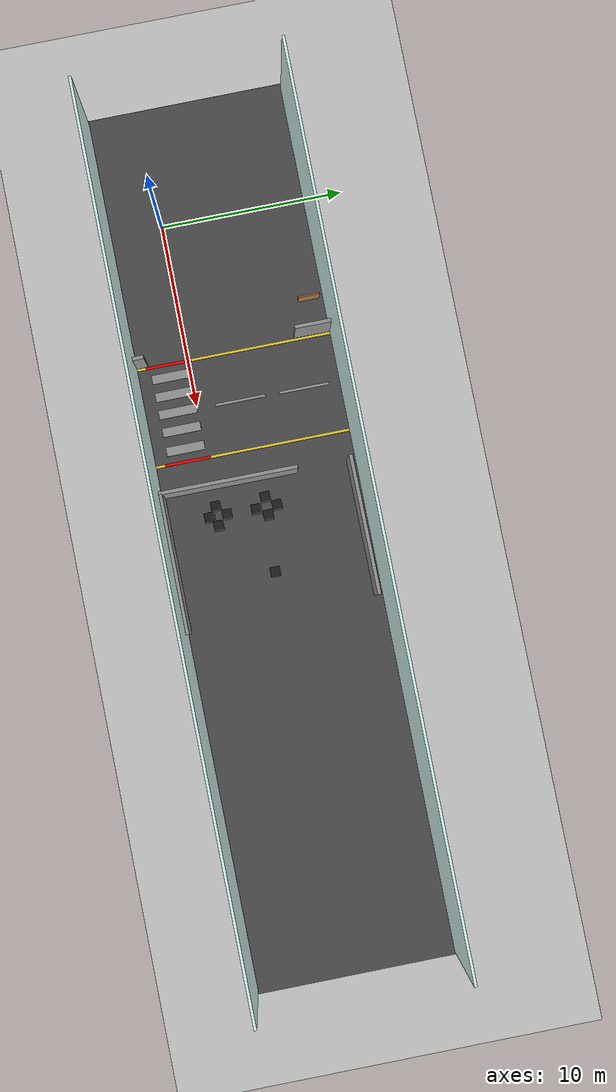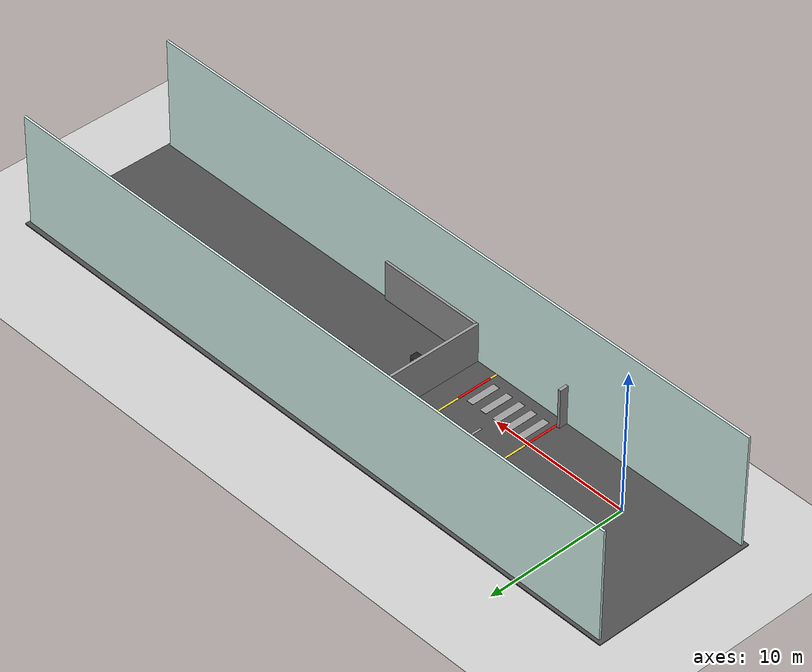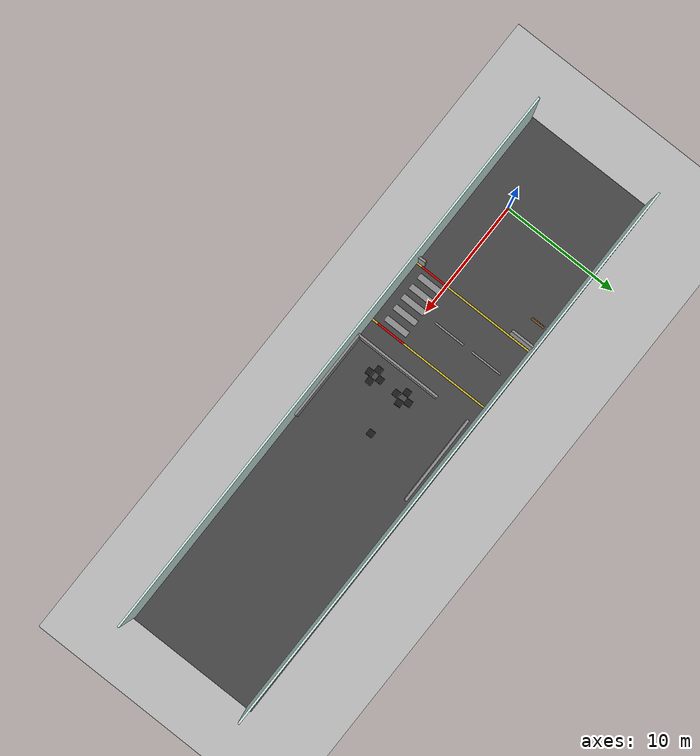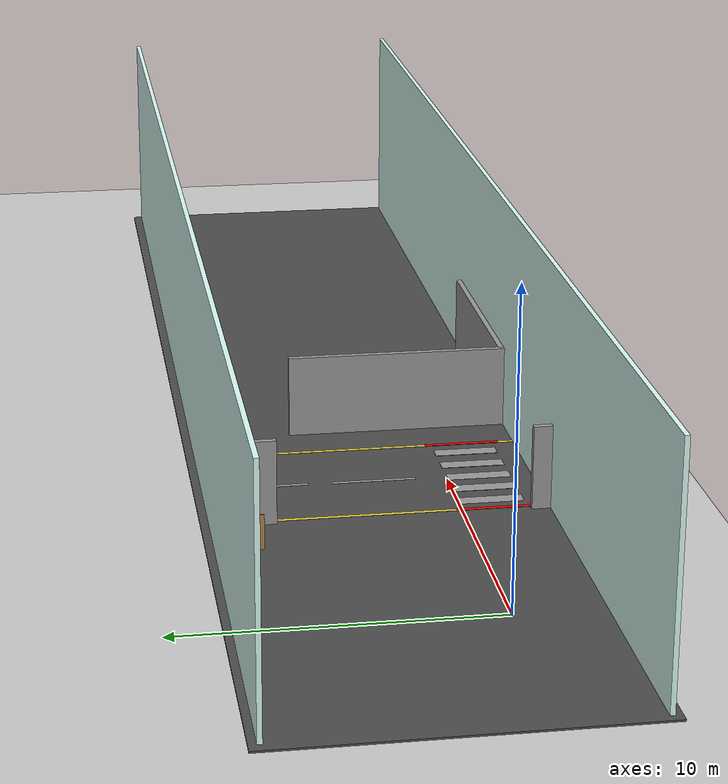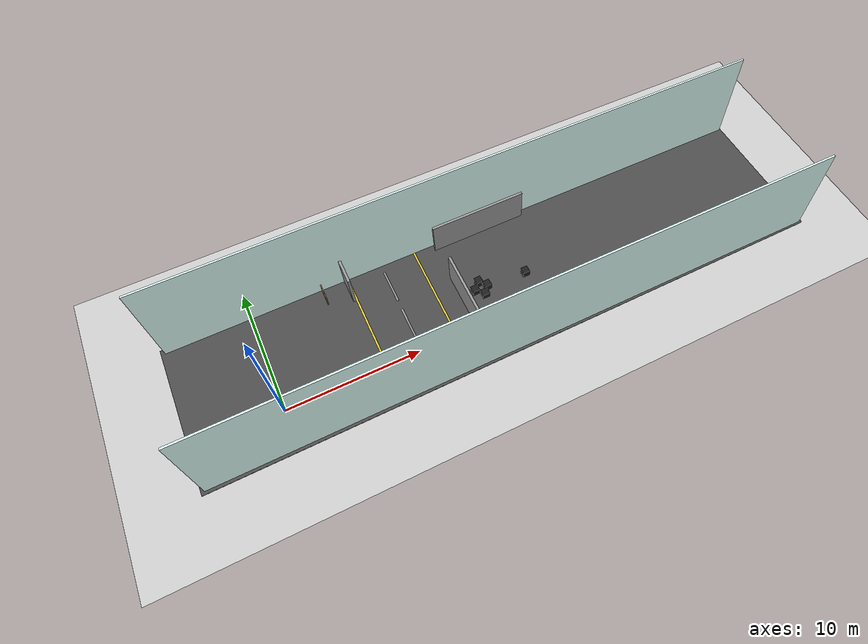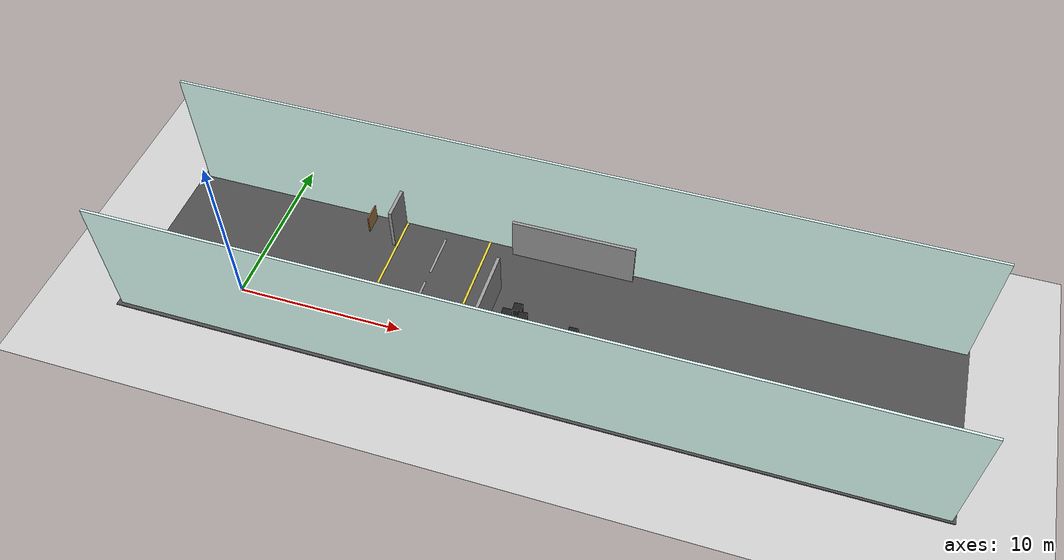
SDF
<sdf version="1.6">
 <world name="default">
  <model name="ground_plane">
   <static>1</static>
   <link name="link">
    <collision name="collision">
     <geometry><plane><normal>0 0 1</normal><size>100 100</size></plane></geometry>
     <surface>
      <contact><collide_bitmask>65535</collide_bitmask></contact>
      <friction><ode><mu>100</mu><mu2>50</mu2></ode></friction>
     </surface>
    </collision>
    <visual name="visual">
     <cast_shadows>0</cast_shadows>
     <geometry><plane><normal>0 0 1</normal><size>100 100</size></plane></geometry>
     <material>
      <script><uri>file://media/materials/scripts/gazebo.material</uri><name>Gazebo/Grey</name></script>
     </material>
    </visual>
   </link>
  </model>
  <model name="grey_wall">
   <static>1</static>
   <link name="link">
    <pose>0 0 1.4 0 -0 0</pose>
    <collision name="collision"><geometry><box><size>7.5 0.2 2.8</size></box></geometry></collision>
    <visual name="visual">
     <cast_shadows>0</cast_shadows>
     <geometry><box><size>7.5 0.2 2.8</size></box></geometry>
     <material>
      <script>
       <uri>model://grey_wall/materials/scripts</uri>
       <uri>model://grey_wall/materials/textures</uri>
       <name>vrc/grey_wall</name>
      </script>
     </material>
    </visual>
   </link>
   <pose>18.2315 7.51175 0 0 -0 0.005635</pose>
  </model>
  <model name="grey_wall_1">
   <static>1</static>
   <link name="link">
    <pose>0 0 1.4 0 -0 0</pose>
    <collision name="collision"><geometry><box><size>7.5 0.2 2.8</size></box></geometry></collision>
    <visual name="visual">
     <cast_shadows>0</cast_shadows>
     <geometry><box><size>7.5 0.2 2.8</size></box></geometry>
     <material>
      <script>
       <uri>model://grey_wall/materials/scripts</uri>
       <uri>model://grey_wall/materials/textures</uri>
       <name>vrc/grey_wall</name>
      </script>
     </material>
    </visual>
   </link>
   <pose>14.5585 0.893344 0 0 -0 1.56876</pose>
  </model>
  <model name="grey_wall_clone">
   <static>1</static>
   <link name="link">
    <pose>0 0 1.4 0 -0 0</pose>
    <collision name="collision"><geometry><box><size>7.5 0.2 2.8</size></box></geometry></collision>
    <visual name="visual">
     <cast_shadows>0</cast_shadows>
     <geometry><box><size>7.5 0.2 2.8</size></box></geometry>
     <material>
      <script>
       <uri>model://grey_wall/materials/scripts</uri>
       <uri>model://grey_wall/materials/textures</uri>
       <name>vrc/grey_wall</name>
      </script>
     </material>
    </visual>
   </link>
   <pose>18.3523 -2.72946 0 0 -0 0</pose>
  </model>
  <model name="asphalt_plane_new">
   <link name="link">
    <inertial>
     <mass>1</mass>
     <inertia><ixx>1</ixx><ixy>0</ixy><ixz>0</ixz><iyy>1</iyy><iyz>0</iyz><izz>1</izz></inertia>
    </inertial>
    <visual name="visual">
     <cast_shadows>0</cast_shadows>
     <geometry><box><size>48.1726 11.4674 0.5486</size></box></geometry>
     <material>
      <script>
       <uri>model://asphalt_plane/materials/scripts</uri>
       <uri>model://asphalt_plane/materials/textures</uri>
       <name>vrc/asphalt</name>
      </script>
      <shader type="pixel"><normal_map>__default__</normal_map></shader>
      <ambient>0.5 0.5 0.5 1</ambient>
      <diffuse>0.5 0.5 0.5 1</diffuse>
      <specular>0.2 0.2 0.2 1</specular>
      <emissive>0 0 0 1</emissive>
     </material>
    </visual>
   </link>
   <static>1</static>
   <pose>17.4989 2.59063 -0.264849 0 -0 0.00191</pose>
  </model>
  <model name="grey_wall_clone_0">
   <link name="link">
    <pose>2.90621 0.028382 1.4 0 -0 0</pose>
    <inertial>
     <mass>1</mass>
     <inertia><ixx>1</ixx><ixy>0</ixy><ixz>0</ixz><iyy>1</iyy><iyz>0</iyz><izz>1</izz></inertia>
    </inertial>
    <visual name="visual">
     <cast_shadows>0</cast_shadows>
     <geometry><box><size>2 0.2 2.8</size></box></geometry>
     <material>
      <script>
       <uri>model://grey_wall/materials/scripts</uri>
       <uri>model://grey_wall/materials/textures</uri>
       <name>vrc/grey_wall</name>
      </script>
      <shader type="pixel"><normal_map>__default__</normal_map></shader>
      <ambient>1 1 1 1</ambient>
      <diffuse>1 1 1 1</diffuse>
      <specular>0 0 0 1</specular>
      <emissive>0 0 0 1</emissive>
     </material>
    </visual>
    <collision name="collision">
     <geometry><box><size>2 0.2 2.8</size></box></geometry>
     <surface>
      <friction>
       <ode><mu>1</mu><mu2>1</mu2><fdir1>0 0 0</fdir1><slip1>0</slip1><slip2>0</slip2></ode>
       <torsional>
        <coefficient>1</coefficient>
        <patch_radius>0</patch_radius>
        <surface_radius>0</surface_radius>
        <use_patch_radius>1</use_patch_radius>
        <ode><slip>0</slip></ode>
       </torsional>
      </friction>
      <bounce><restitution_coefficient>0</restitution_coefficient><threshold>1e+06</threshold></bounce>
      <contact>
       <collide_without_contact>0</collide_without_contact>
       <collide_without_contact_bitmask>1</collide_without_contact_bitmask>
       <collide_bitmask>1</collide_bitmask>
       <ode>
        <soft_cfm>0</soft_cfm>
        <soft_erp>0.2</soft_erp>
        <kp>1e+13</kp>
        <kd>1</kd>
        <max_vel>0.01</max_vel>
        <min_depth>0</min_depth>
       </ode>
       <bullet>
        <split_impulse>1</split_impulse>
        <split_impulse_penetration_threshold>-0.01</split_impulse_penetration_threshold>
        <soft_cfm>0</soft_cfm>
        <soft_erp>0.2</soft_erp>
        <kp>1e+13</kp>
        <kd>1</kd>
       </bullet>
      </contact>
     </surface>
    </collision>
   </link>
   <static>1</static>
   <pose>7.26761 9.82843 0 0 0 -1.57</pose>
  </model>
  <model name="grey_wall_clone_0_clone_1">
   <link name="link">
    <pose>0 0 1.4 0 -0 0</pose>
    <inertial>
     <mass>1</mass>
     <inertia><ixx>1</ixx><ixy>0</ixy><ixz>0</ixz><iyy>1</iyy><iyz>0</iyz><izz>1</izz></inertia>
    </inertial>
    <visual name="visual">
     <cast_shadows>0</cast_shadows>
     <geometry><box><size>0.75 0.2 2.8</size></box></geometry>
     <material>
      <script>
       <uri>model://grey_wall/materials/scripts</uri>
       <uri>model://grey_wall/materials/textures</uri>
       <name>vrc/grey_wall</name>
      </script>
      <shader type="pixel"><normal_map>__default__</normal_map></shader>
      <ambient>1 1 1 1</ambient>
      <diffuse>1 1 1 1</diffuse>
      <specular>0 0 0 1</specular>
      <emissive>0 0 0 1</emissive>
     </material>
    </visual>
    <collision name="collision">
     <geometry><box><size>0.75 0.2 2.8</size></box></geometry>
     <surface>
      <friction>
       <ode><mu>1</mu><mu2>1</mu2><fdir1>0 0 0</fdir1><slip1>0</slip1><slip2>0</slip2></ode>
       <torsional>
        <coefficient>1</coefficient>
        <patch_radius>0</patch_radius>
        <surface_radius>0</surface_radius>
        <use_patch_radius>1</use_patch_radius>
        <ode><slip>0</slip></ode>
       </torsional>
      </friction>
      <bounce><restitution_coefficient>0</restitution_coefficient><threshold>1e+06</threshold></bounce>
      <contact>
       <collide_without_contact>0</collide_without_contact>
       <collide_without_contact_bitmask>1</collide_without_contact_bitmask>
       <collide_bitmask>1</collide_bitmask>
       <ode>
        <soft_cfm>0</soft_cfm>
        <soft_erp>0.2</soft_erp>
        <kp>1e+13</kp>
        <kd>1</kd>
        <max_vel>0.01</max_vel>
        <min_depth>0</min_depth>
       </ode>
       <bullet>
        <split_impulse>1</split_impulse>
        <split_impulse_penetration_threshold>-0.01</split_impulse_penetration_threshold>
        <soft_cfm>0</soft_cfm>
        <soft_erp>0.2</soft_erp>
        <kp>1e+13</kp>
        <kd>1</kd>
       </bullet>
      </contact>
     </surface>
    </collision>
   </link>
   <static>1</static>
   <pose>7.30492 -2.5737 0 0 0 -1.54624</pose>
  </model>
  <model name="unit_box_0_clone_22_clone_15">
   <link name="link">
    <inertial>
     <mass>1</mass>
     <inertia>
      <ixx>0.166667</ixx>
      <ixy>0</ixy>
      <ixz>0</ixz>
      <iyy>0.166667</iyy>
      <iyz>0</iyz>
      <izz>0.166667</izz>
     </inertia>
    </inertial>
    <visual name="visual">
     <geometry><box><size>0.530101 0.530101 0.530101</size></box></geometry>
     <material>
      <script><name>Gazebo/FlatBlack</name><uri>file://media/materials/scripts/gazebo.material</uri></script>
      <shader type="pixel"><normal_map>__default__</normal_map></shader>
      <ambient>0.1 0.1 0.1 1</ambient>
      <diffuse>0.1 0.1 0.1 1</diffuse>
      <specular>0.01 0.01 0.01 1</specular>
      <emissive>0 0 0 1</emissive>
     </material>
    </visual>
    <collision name="collision">
     <geometry><box><size>0.530101 0.530101 0.530101</size></box></geometry>
     <surface>
      <friction>
       <ode><mu>1</mu><mu2>1</mu2><fdir1>0 0 0</fdir1><slip1>0</slip1><slip2>0</slip2></ode>
       <torsional>
        <coefficient>1</coefficient>
        <patch_radius>0</patch_radius>
        <surface_radius>0</surface_radius>
        <use_patch_radius>1</use_patch_radius>
        <ode><slip>0</slip></ode>
       </torsional>
      </friction>
      <bounce><restitution_coefficient>0</restitution_coefficient><threshold>1e+06</threshold></bounce>
      <contact>
       <collide_without_contact>0</collide_without_contact>
       <collide_without_contact_bitmask>1</collide_without_contact_bitmask>
       <collide_bitmask>1</collide_bitmask>
       <ode>
        <soft_cfm>0</soft_cfm>
        <soft_erp>0.2</soft_erp>
        <kp>1e+13</kp>
        <kd>1</kd>
        <max_vel>0.01</max_vel>
        <min_depth>0</min_depth>
       </ode>
       <bullet>
        <split_impulse>1</split_impulse>
        <split_impulse_penetration_threshold>-0.01</split_impulse_penetration_threshold>
        <soft_cfm>0</soft_cfm>
        <soft_erp>0.2</soft_erp>
        <kp>1e+13</kp>
        <kd>1</kd>
       </bullet>
      </contact>
     </surface>
    </collision>
   </link>
   <static>0</static>
   <pose>16.1737 2.0964 0.284667 0.077054 -0 -0.016732</pose>
  </model>
  <model name="unit_box_0_clone_22_clone_4">
   <link name="link">
    <inertial>
     <mass>1</mass>
     <inertia>
      <ixx>0.166667</ixx>
      <ixy>0</ixy>
      <ixz>0</ixz>
      <iyy>0.166667</iyy>
      <iyz>0</iyz>
      <izz>0.166667</izz>
     </inertia>
    </inertial>
    <visual name="visual">
     <geometry><box><size>0.530101 0.530101 0.530101</size></box></geometry>
     <material>
      <script><name>Gazebo/FlatBlack</name><uri>file://media/materials/scripts/gazebo.material</uri></script>
      <shader type="pixel"><normal_map>__default__</normal_map></shader>
      <ambient>0.1 0.1 0.1 1</ambient>
      <diffuse>0.1 0.1 0.1 1</diffuse>
      <specular>0.01 0.01 0.01 1</specular>
      <emissive>0 0 0 1</emissive>
     </material>
    </visual>
    <collision name="collision">
     <geometry><box><size>0.530101 0.530101 0.530101</size></box></geometry>
     <surface>
      <friction>
       <ode><mu>1</mu><mu2>1</mu2><fdir1>0 0 0</fdir1><slip1>0</slip1><slip2>0</slip2></ode>
       <torsional>
        <coefficient>1</coefficient>
        <patch_radius>0</patch_radius>
        <surface_radius>0</surface_radius>
        <use_patch_radius>1</use_patch_radius>
        <ode><slip>0</slip></ode>
       </torsional>
      </friction>
      <bounce><restitution_coefficient>0</restitution_coefficient><threshold>1e+06</threshold></bounce>
      <contact>
       <collide_without_contact>0</collide_without_contact>
       <collide_without_contact_bitmask>1</collide_without_contact_bitmask>
       <collide_bitmask>1</collide_bitmask>
       <ode>
        <soft_cfm>0</soft_cfm>
        <soft_erp>0.2</soft_erp>
        <kp>1e+13</kp>
        <kd>1</kd>
        <max_vel>0.01</max_vel>
        <min_depth>0</min_depth>
       </ode>
       <bullet>
        <split_impulse>1</split_impulse>
        <split_impulse_penetration_threshold>-0.01</split_impulse_penetration_threshold>
        <soft_cfm>0</soft_cfm>
        <soft_erp>0.2</soft_erp>
        <kp>1e+13</kp>
        <kd>1</kd>
       </bullet>
      </contact>
     </surface>
    </collision>
   </link>
   <static>0</static>
   <pose>19.699 2.43698 0.31411 7e-06 4e-06 -0.010481</pose>
  </model>
  <model name="unit_box_0_clone_22_clone_15_clone">
   <link name="link">
    <inertial>
     <mass>1</mass>
     <inertia>
      <ixx>0.166667</ixx>
      <ixy>0</ixy>
      <ixz>0</ixz>
      <iyy>0.166667</iyy>
      <iyz>0</iyz>
      <izz>0.166667</izz>
     </inertia>
    </inertial>
    <visual name="visual">
     <geometry><box><size>0.530101 0.530101 0.530101</size></box></geometry>
     <material>
      <script><name>Gazebo/FlatBlack</name><uri>file://media/materials/scripts/gazebo.material</uri></script>
      <shader type="pixel"><normal_map>__default__</normal_map></shader>
      <ambient>0.1 0.1 0.1 1</ambient>
      <diffuse>0.1 0.1 0.1 1</diffuse>
      <specular>0.01 0.01 0.01 1</specular>
      <emissive>0 0 0 1</emissive>
     </material>
    </visual>
    <collision name="collision">
     <geometry><box><size>0.530101 0.530101 0.530101</size></box></geometry>
     <surface>
      <friction>
       <ode><mu>1</mu><mu2>1</mu2><fdir1>0 0 0</fdir1><slip1>0</slip1><slip2>0</slip2></ode>
       <torsional>
        <coefficient>1</coefficient>
        <patch_radius>0</patch_radius>
        <surface_radius>0</surface_radius>
        <use_patch_radius>1</use_patch_radius>
        <ode><slip>0</slip></ode>
       </torsional>
      </friction>
      <bounce><restitution_coefficient>0</restitution_coefficient><threshold>1e+06</threshold></bounce>
      <contact>
       <collide_without_contact>0</collide_without_contact>
       <collide_without_contact_bitmask>1</collide_without_contact_bitmask>
       <collide_bitmask>1</collide_bitmask>
       <ode>
        <soft_cfm>0</soft_cfm>
        <soft_erp>0.2</soft_erp>
        <kp>1e+13</kp>
        <kd>1</kd>
        <max_vel>0.01</max_vel>
        <min_depth>0</min_depth>
       </ode>
       <bullet>
        <split_impulse>1</split_impulse>
        <split_impulse_penetration_threshold>-0.01</split_impulse_penetration_threshold>
        <soft_cfm>0</soft_cfm>
        <soft_erp>0.2</soft_erp>
        <kp>1e+13</kp>
        <kd>1</kd>
       </bullet>
      </contact>
     </surface>
    </collision>
   </link>
   <static>0</static>
   <pose>16.6129 2.65853 0.310624 -0.001175 -0.020058 0.060983</pose>
  </model>
  <model name="unit_box_0_clone_22_clone_15_clone_0">
   <link name="link">
    <inertial>
     <mass>1</mass>
     <inertia>
      <ixx>0.166667</ixx>
      <ixy>0</ixy>
      <ixz>0</ixz>
      <iyy>0.166667</iyy>
      <iyz>0</iyz>
      <izz>0.166667</izz>
     </inertia>
    </inertial>
    <visual name="visual">
     <geometry><box><size>0.530101 0.530101 0.530101</size></box></geometry>
     <material>
      <script><name>Gazebo/FlatBlack</name><uri>file://media/materials/scripts/gazebo.material</uri></script>
      <shader type="pixel"><normal_map>__default__</normal_map></shader>
      <ambient>0.1 0.1 0.1 1</ambient>
      <diffuse>0.1 0.1 0.1 1</diffuse>
      <specular>0.01 0.01 0.01 1</specular>
      <emissive>0 0 0 1</emissive>
     </material>
    </visual>
    <collision name="collision">
     <geometry><box><size>0.530101 0.530101 0.530101</size></box></geometry>
     <surface>
      <friction>
       <ode><mu>1</mu><mu2>1</mu2><fdir1>0 0 0</fdir1><slip1>0</slip1><slip2>0</slip2></ode>
       <torsional>
        <coefficient>1</coefficient>
        <patch_radius>0</patch_radius>
        <surface_radius>0</surface_radius>
        <use_patch_radius>1</use_patch_radius>
        <ode><slip>0</slip></ode>
       </torsional>
      </friction>
      <bounce><restitution_coefficient>0</restitution_coefficient><threshold>1e+06</threshold></bounce>
      <contact>
       <collide_without_contact>0</collide_without_contact>
       <collide_without_contact_bitmask>1</collide_without_contact_bitmask>
       <collide_bitmask>1</collide_bitmask>
       <ode>
        <soft_cfm>0</soft_cfm>
        <soft_erp>0.2</soft_erp>
        <kp>1e+13</kp>
        <kd>1</kd>
        <max_vel>0.01</max_vel>
        <min_depth>0</min_depth>
       </ode>
       <bullet>
        <split_impulse>1</split_impulse>
        <split_impulse_penetration_threshold>-0.01</split_impulse_penetration_threshold>
        <soft_cfm>0</soft_cfm>
        <soft_erp>0.2</soft_erp>
        <kp>1e+13</kp>
        <kd>1</kd>
       </bullet>
      </contact>
     </surface>
    </collision>
   </link>
   <static>0</static>
   <pose>16.1648 3.22166 0.26505 0 -0 0.066212</pose>
  </model>
  <model name="unit_box_0_clone_22_clone_15_clone_1">
   <link name="link">
    <inertial>
     <mass>1</mass>
     <inertia>
      <ixx>0.166667</ixx>
      <ixy>0</ixy>
      <ixz>0</ixz>
      <iyy>0.166667</iyy>
      <iyz>0</iyz>
      <izz>0.166667</izz>
     </inertia>
    </inertial>
    <visual name="visual">
     <geometry><box><size>0.530101 0.530101 0.530101</size></box></geometry>
     <material>
      <script><name>Gazebo/FlatBlack</name><uri>file://media/materials/scripts/gazebo.material</uri></script>
      <shader type="pixel"><normal_map>__default__</normal_map></shader>
      <ambient>0.1 0.1 0.1 1</ambient>
      <diffuse>0.1 0.1 0.1 1</diffuse>
      <specular>0.01 0.01 0.01 1</specular>
      <emissive>0 0 0 1</emissive>
     </material>
    </visual>
    <collision name="collision">
     <geometry><box><size>0.530101 0.530101 0.530101</size></box></geometry>
     <surface>
      <friction>
       <ode><mu>1</mu><mu2>1</mu2><fdir1>0 0 0</fdir1><slip1>0</slip1><slip2>0</slip2></ode>
       <torsional>
        <coefficient>1</coefficient>
        <patch_radius>0</patch_radius>
        <surface_radius>0</surface_radius>
        <use_patch_radius>1</use_patch_radius>
        <ode><slip>0</slip></ode>
       </torsional>
      </friction>
      <bounce><restitution_coefficient>0</restitution_coefficient><threshold>1e+06</threshold></bounce>
      <contact>
       <collide_without_contact>0</collide_without_contact>
       <collide_without_contact_bitmask>1</collide_without_contact_bitmask>
       <collide_bitmask>1</collide_bitmask>
       <ode>
        <soft_cfm>0</soft_cfm>
        <soft_erp>0.2</soft_erp>
        <kp>1e+13</kp>
        <kd>1</kd>
        <max_vel>0.01</max_vel>
        <min_depth>0</min_depth>
       </ode>
       <bullet>
        <split_impulse>1</split_impulse>
        <split_impulse_penetration_threshold>-0.01</split_impulse_penetration_threshold>
        <soft_cfm>0</soft_cfm>
        <soft_erp>0.2</soft_erp>
        <kp>1e+13</kp>
        <kd>1</kd>
       </bullet>
      </contact>
     </surface>
    </collision>
   </link>
   <static>0</static>
   <pose>15.6259 2.67518 0.26505 0 -0 0.031191</pose>
  </model>
  <model name="unit_box_0_clone_22_clone_15_clone_2">
   <link name="link">
    <inertial>
     <mass>1</mass>
     <inertia>
      <ixx>0.166667</ixx>
      <ixy>0</ixy>
      <ixz>0</ixz>
      <iyy>0.166667</iyy>
      <iyz>0</iyz>
      <izz>0.166667</izz>
     </inertia>
    </inertial>
    <visual name="visual">
     <geometry><box><size>0.530101 0.530101 0.530101</size></box></geometry>
     <material>
      <script><name>Gazebo/FlatBlack</name><uri>file://media/materials/scripts/gazebo.material</uri></script>
      <shader type="pixel"><normal_map>__default__</normal_map></shader>
      <ambient>0.1 0.1 0.1 1</ambient>
      <diffuse>0.1 0.1 0.1 1</diffuse>
      <specular>0.01 0.01 0.01 1</specular>
      <emissive>0 0 0 1</emissive>
     </material>
    </visual>
    <collision name="collision">
     <geometry><box><size>0.530101 0.530101 0.530101</size></box></geometry>
     <surface>
      <friction>
       <ode><mu>1</mu><mu2>1</mu2><fdir1>0 0 0</fdir1><slip1>0</slip1><slip2>0</slip2></ode>
       <torsional>
        <coefficient>1</coefficient>
        <patch_radius>0</patch_radius>
        <surface_radius>0</surface_radius>
        <use_patch_radius>1</use_patch_radius>
        <ode><slip>0</slip></ode>
       </torsional>
      </friction>
      <bounce><restitution_coefficient>0</restitution_coefficient><threshold>1e+06</threshold></bounce>
      <contact>
       <collide_without_contact>0</collide_without_contact>
       <collide_without_contact_bitmask>1</collide_without_contact_bitmask>
       <collide_bitmask>1</collide_bitmask>
       <ode>
        <soft_cfm>0</soft_cfm>
        <soft_erp>0.2</soft_erp>
        <kp>1e+13</kp>
        <kd>1</kd>
        <max_vel>0.01</max_vel>
        <min_depth>0</min_depth>
       </ode>
       <bullet>
        <split_impulse>1</split_impulse>
        <split_impulse_penetration_threshold>-0.01</split_impulse_penetration_threshold>
        <soft_cfm>0</soft_cfm>
        <soft_erp>0.2</soft_erp>
        <kp>1e+13</kp>
        <kd>1</kd>
       </bullet>
      </contact>
     </surface>
    </collision>
   </link>
   <static>0</static>
   <pose>16.6776 -0.07224 0.311374 -0.000263 -0.023886 0.013632</pose>
  </model>
  <model name="unit_box_0_clone_22_clone_15_clone_3">
   <link name="link">
    <inertial>
     <mass>1</mass>
     <inertia>
      <ixx>0.166667</ixx>
      <ixy>0</ixy>
      <ixz>0</ixz>
      <iyy>0.166667</iyy>
      <iyz>0</iyz>
      <izz>0.166667</izz>
     </inertia>
    </inertial>
    <visual name="visual">
     <geometry><box><size>0.530101 0.530101 0.530101</size></box></geometry>
     <material>
      <script><name>Gazebo/FlatBlack</name><uri>file://media/materials/scripts/gazebo.material</uri></script>
      <shader type="pixel"><normal_map>__default__</normal_map></shader>
      <ambient>0.1 0.1 0.1 1</ambient>
      <diffuse>0.1 0.1 0.1 1</diffuse>
      <specular>0.01 0.01 0.01 1</specular>
      <emissive>0 0 0 1</emissive>
     </material>
    </visual>
    <collision name="collision">
     <geometry><box><size>0.530101 0.530101 0.530101</size></box></geometry>
     <surface>
      <friction>
       <ode><mu>1</mu><mu2>1</mu2><fdir1>0 0 0</fdir1><slip1>0</slip1><slip2>0</slip2></ode>
       <torsional>
        <coefficient>1</coefficient>
        <patch_radius>0</patch_radius>
        <surface_radius>0</surface_radius>
        <use_patch_radius>1</use_patch_radius>
        <ode><slip>0</slip></ode>
       </torsional>
      </friction>
      <bounce><restitution_coefficient>0</restitution_coefficient><threshold>1e+06</threshold></bounce>
      <contact>
       <collide_without_contact>0</collide_without_contact>
       <collide_without_contact_bitmask>1</collide_without_contact_bitmask>
       <collide_bitmask>1</collide_bitmask>
       <ode>
        <soft_cfm>0</soft_cfm>
        <soft_erp>0.2</soft_erp>
        <kp>1e+13</kp>
        <kd>1</kd>
        <max_vel>0.01</max_vel>
        <min_depth>0</min_depth>
       </ode>
       <bullet>
        <split_impulse>1</split_impulse>
        <split_impulse_penetration_threshold>-0.01</split_impulse_penetration_threshold>
        <soft_cfm>0</soft_cfm>
        <soft_erp>0.2</soft_erp>
        <kp>1e+13</kp>
        <kd>1</kd>
       </bullet>
      </contact>
     </surface>
    </collision>
   </link>
   <static>0</static>
   <pose>16.1471 0.46453 0.291846 -0.106548 -0.00042 -0.003955</pose>
  </model>
  <model name="unit_box_0_clone_22_clone_15_clone_4">
   <link name="link">
    <inertial>
     <mass>1</mass>
     <inertia>
      <ixx>0.166667</ixx>
      <ixy>0</ixy>
      <ixz>0</ixz>
      <iyy>0.166667</iyy>
      <iyz>0</iyz>
      <izz>0.166667</izz>
     </inertia>
    </inertial>
    <visual name="visual">
     <geometry><box><size>0.530101 0.530101 0.530101</size></box></geometry>
     <material>
      <script><name>Gazebo/FlatBlack</name><uri>file://media/materials/scripts/gazebo.material</uri></script>
      <shader type="pixel"><normal_map>__default__</normal_map></shader>
      <ambient>0.1 0.1 0.1 1</ambient>
      <diffuse>0.1 0.1 0.1 1</diffuse>
      <specular>0.01 0.01 0.01 1</specular>
      <emissive>0 0 0 1</emissive>
     </material>
    </visual>
    <collision name="collision">
     <geometry><box><size>0.530101 0.530101 0.530101</size></box></geometry>
     <surface>
      <friction>
       <ode><mu>1</mu><mu2>1</mu2><fdir1>0 0 0</fdir1><slip1>0</slip1><slip2>0</slip2></ode>
       <torsional>
        <coefficient>1</coefficient>
        <patch_radius>0</patch_radius>
        <surface_radius>0</surface_radius>
        <use_patch_radius>1</use_patch_radius>
        <ode><slip>0</slip></ode>
       </torsional>
      </friction>
      <bounce><restitution_coefficient>0</restitution_coefficient><threshold>1e+06</threshold></bounce>
      <contact>
       <collide_without_contact>0</collide_without_contact>
       <collide_without_contact_bitmask>1</collide_without_contact_bitmask>
       <collide_bitmask>1</collide_bitmask>
       <ode>
        <soft_cfm>0</soft_cfm>
        <soft_erp>0.2</soft_erp>
        <kp>1e+13</kp>
        <kd>1</kd>
        <max_vel>0.01</max_vel>
        <min_depth>0</min_depth>
       </ode>
       <bullet>
        <split_impulse>1</split_impulse>
        <split_impulse_penetration_threshold>-0.01</split_impulse_penetration_threshold>
        <soft_cfm>0</soft_cfm>
        <soft_erp>0.2</soft_erp>
        <kp>1e+13</kp>
        <kd>1</kd>
       </bullet>
      </contact>
     </surface>
    </collision>
   </link>
   <static>0</static>
   <pose>15.6128 -0.033067 0.26505 0 0 -0.001316</pose>
  </model>
  <model name="unit_box_0_clone_22_clone_15_clone_5">
   <link name="link">
    <inertial>
     <mass>1</mass>
     <inertia>
      <ixx>0.166667</ixx>
      <ixy>0</ixy>
      <ixz>0</ixz>
      <iyy>0.166667</iyy>
      <iyz>0</iyz>
      <izz>0.166667</izz>
     </inertia>
    </inertial>
    <visual name="visual">
     <geometry><box><size>0.530101 0.530101 0.530101</size></box></geometry>
     <material>
      <script><name>Gazebo/FlatBlack</name><uri>file://media/materials/scripts/gazebo.material</uri></script>
      <shader type="pixel"><normal_map>__default__</normal_map></shader>
      <ambient>0.1 0.1 0.1 1</ambient>
      <diffuse>0.1 0.1 0.1 1</diffuse>
      <specular>0.01 0.01 0.01 1</specular>
      <emissive>0 0 0 1</emissive>
     </material>
    </visual>
    <collision name="collision">
     <geometry><box><size>0.530101 0.530101 0.530101</size></box></geometry>
     <surface>
      <friction>
       <ode><mu>1</mu><mu2>1</mu2><fdir1>0 0 0</fdir1><slip1>0</slip1><slip2>0</slip2></ode>
       <torsional>
        <coefficient>1</coefficient>
        <patch_radius>0</patch_radius>
        <surface_radius>0</surface_radius>
        <use_patch_radius>1</use_patch_radius>
        <ode><slip>0</slip></ode>
       </torsional>
      </friction>
      <bounce><restitution_coefficient>0</restitution_coefficient><threshold>1e+06</threshold></bounce>
      <contact>
       <collide_without_contact>0</collide_without_contact>
       <collide_without_contact_bitmask>1</collide_without_contact_bitmask>
       <collide_bitmask>1</collide_bitmask>
       <ode>
        <soft_cfm>0</soft_cfm>
        <soft_erp>0.2</soft_erp>
        <kp>1e+13</kp>
        <kd>1</kd>
        <max_vel>0.01</max_vel>
        <min_depth>0</min_depth>
       </ode>
       <bullet>
        <split_impulse>1</split_impulse>
        <split_impulse_penetration_threshold>-0.01</split_impulse_penetration_threshold>
        <soft_cfm>0</soft_cfm>
        <soft_erp>0.2</soft_erp>
        <kp>1e+13</kp>
        <kd>1</kd>
       </bullet>
      </contact>
     </surface>
    </collision>
   </link>
   <static>0</static>
   <pose>16.1474 -0.467483 0.286451 0.083017 -0.001302 0.015753</pose>
  </model>
  <model name="road_marks">
   <link name="Wall_63">
    <pose>2.6855 -0.180493 0.00816 0 0 -1.5708</pose>
    <inertial>
     <inertia><ixx>0</ixx><ixy>0</ixy><ixz>0</ixz><iyy>0</iyy><iyz>0</iyz><izz>0</izz></inertia>
     <mass>0</mass>
    </inertial>
    <visual name="Wall_63_Visual">
     <pose>0 0 1.25 0 -0 0</pose>
     <geometry><box><size>10.85 0.15 0.05</size></box></geometry>
     <material>
      <script><uri>file://media/materials/scripts/gazebo.material</uri><name>Gazebo/ZincYellow</name></script>
      <ambient>1 1 1 1</ambient>
      <shader type="pixel"><normal_map>__default__</normal_map></shader>
      <diffuse>0.7 0.7 0.7 1</diffuse>
      <specular>0.01 0.01 0.01 1</specular>
      <emissive>0 0 0 1</emissive>
     </material>
     <meta><layer>0</layer></meta>
    </visual>
   </link>
   <link name="Wall_68">
    <pose>-2.72228 -0.223638 0.00816 0 0 -1.5708</pose>
    <inertial>
     <mass>1</mass>
     <inertia><ixx>1</ixx><ixy>0</ixy><ixz>0</ixz><iyy>1</iyy><iyz>0</iyz><izz>1</izz></inertia>
    </inertial>
    <visual name="Wall_68_Visual">
     <pose>0 0 1.25 0 -0 0</pose>
     <geometry><box><size>10.85 0.15 0.05</size></box></geometry>
     <material>
      <script><uri>file://media/materials/scripts/gazebo.material</uri><name>Gazebo/ZincYellow</name></script>
      <ambient>1 1 1 1</ambient>
      <shader type="pixel"><normal_map>__default__</normal_map></shader>
      <diffuse>0.7 0.7 0.7 1</diffuse>
      <specular>0.01 0.01 0.01 1</specular>
      <emissive>0 0 0 1</emissive>
     </material>
     <meta><layer>0</layer></meta>
    </visual>
   </link>
   <link name="Wall_70">
    <pose>-0.025427 3.13042 0.00816 0 0 -1.5708</pose>
    <inertial>
     <mass>1</mass>
     <inertia><ixx>1</ixx><ixy>0</ixy><ixz>0</ixz><iyy>1</iyy><iyz>0</iyz><izz>1</izz></inertia>
    </inertial>
    <visual name="Wall_70_Visual">
     <pose>0 0 1.25 0 -0 0</pose>
     <geometry><box><size>2.75 0.15 0.05</size></box></geometry>
     <material>
      <script><uri>file://media/materials/scripts/gazebo.material</uri><name>Gazebo/Grey</name></script>
      <ambient>1 1 1 1</ambient>
      <shader type="pixel"><normal_map>__default__</normal_map></shader>
      <diffuse>0.7 0.7 0.7 1</diffuse>
      <specular>0.01 0.01 0.01 1</specular>
      <emissive>0 0 0 1</emissive>
     </material>
     <meta><layer>0</layer></meta>
    </visual>
   </link>
   <link name="Wall_72">
    <pose>-0.041656 -0.398325 0.00816 0 0 -1.5708</pose>
    <inertial>
     <mass>1</mass>
     <inertia><ixx>1</ixx><ixy>0</ixy><ixz>0</ixz><iyy>1</iyy><iyz>0</iyz><izz>1</izz></inertia>
    </inertial>
    <visual name="Wall_72_Visual">
     <pose>0 0 1.25 0 -0 0</pose>
     <geometry><box><size>2.75 0.15 0.05</size></box></geometry>
     <material>
      <script><uri>file://media/materials/scripts/gazebo.material</uri><name>Gazebo/Grey</name></script>
      <ambient>1 1 1 1</ambient>
      <shader type="pixel"><normal_map>__default__</normal_map></shader>
      <diffuse>0.7 0.7 0.7 1</diffuse>
      <specular>0.01 0.01 0.01 1</specular>
      <emissive>0 0 0 1</emissive>
     </material>
     <meta><layer>0</layer></meta>
    </visual>
   </link>
   <link name="link_0">
    <inertial>
     <mass>1</mass>
     <inertia>
      <ixx>0.166667</ixx>
      <ixy>0</ixy>
      <ixz>0</ixz>
      <iyy>0.166667</iyy>
      <iyz>0</iyz>
      <izz>0.166667</izz>
     </inertia>
    </inertial>
    <pose>-2.75125 -3.91658 1.77945 0 -0 0</pose>
    <visual name="visual">
     <pose>0 0 -0.53 0 -0 0</pose>
     <geometry><box><size>0.2 2 0.03</size></box></geometry>
     <material>
      <lighting>1</lighting>
      <script><uri>file://media/materials/scripts/gazebo.material</uri><name>Gazebo/Red</name></script>
      <shader type="pixel"><normal_map>__default__</normal_map></shader>
      <ambient>0.3 0.3 0.3 1</ambient>
      <diffuse>0.7 0.7 0.7 1</diffuse>
      <specular>0.01 0.01 0.01 1</specular>
      <emissive>0 0 0 1</emissive>
     </material>
    </visual>
   </link>
   <link name="link_0_clone">
    <inertial>
     <mass>1</mass>
     <inertia>
      <ixx>0.166667</ixx>
      <ixy>0</ixy>
      <ixz>0</ixz>
      <iyy>0.166667</iyy>
      <iyz>0</iyz>
      <izz>0.166667</izz>
     </inertia>
    </inertial>
    <pose>2.68914 -4.13721 1.77945 0 -0 0</pose>
    <visual name="visual">
     <pose>0 0 -0.53 0 -0 0</pose>
     <geometry><box><size>0.2 2 0.03</size></box></geometry>
     <material>
      <lighting>1</lighting>
      <script><uri>file://media/materials/scripts/gazebo.material</uri><name>Gazebo/Red</name></script>
      <shader type="pixel"><normal_map>__default__</normal_map></shader>
      <ambient>0.3 0.3 0.3 1</ambient>
      <diffuse>0.7 0.7 0.7 1</diffuse>
      <specular>0.01 0.01 0.01 1</specular>
      <emissive>0 0 0 1</emissive>
     </material>
    </visual>
   </link>
   <static>1</static>
   <pose>10.2071 2.79317 -1.27065 0 -0 0</pose>
  </model>
  <model name="world_frame">
   <link name="Wall_210">
    <pose>-0.024075 -5.42699 -0.100255 0 -0 0</pose>
    <visual name="Wall_210_Visual">
     <pose>0 0 4 0 -0 0</pose>
     <geometry><box><size>47.75 0.15 8</size></box></geometry>
     <material>
      <script><uri>file://media/materials/scripts/gazebo.material</uri><name>Gazebo/Grey</name></script>
      <ambient>0.866667 1 0.972549 1</ambient>
      <shader type="pixel"/>
      <diffuse>0.7 0.7 0.7 1</diffuse>
      <specular>0.01 0.01 0.01 1</specular>
      <emissive>0 0 0 1</emissive>
     </material>
     <meta><layer>0</layer></meta>
    </visual>
    <collision name="Wall_210_Collision">
     <pose>0 0 4 0 -0 0</pose>
     <geometry><box><size>47.75 0.15 8</size></box></geometry>
     <surface>
      <friction>
       <ode><mu>1</mu><mu2>1</mu2><fdir1>0 0 0</fdir1><slip1>0</slip1><slip2>0</slip2></ode>
       <torsional>
        <coefficient>1</coefficient>
        <patch_radius>0</patch_radius>
        <surface_radius>0</surface_radius>
        <use_patch_radius>1</use_patch_radius>
        <ode><slip>0</slip></ode>
       </torsional>
      </friction>
      <bounce><restitution_coefficient>0</restitution_coefficient><threshold>1e+06</threshold></bounce>
      <contact>
       <collide_without_contact>0</collide_without_contact>
       <collide_without_contact_bitmask>1</collide_without_contact_bitmask>
       <collide_bitmask>1</collide_bitmask>
       <ode>
        <soft_cfm>0</soft_cfm>
        <soft_erp>0.2</soft_erp>
        <kp>1e+13</kp>
        <kd>1</kd>
        <max_vel>0.01</max_vel>
        <min_depth>0</min_depth>
       </ode>
       <bullet>
        <split_impulse>1</split_impulse>
        <split_impulse_penetration_threshold>-0.01</split_impulse_penetration_threshold>
        <soft_cfm>0</soft_cfm>
        <soft_erp>0.2</soft_erp>
        <kp>1e+13</kp>
        <kd>1</kd>
       </bullet>
      </contact>
     </surface>
    </collision>
   </link>
   <link name="Wall_212">
    <pose>0.020361 5.425 -0.100255 0 -0 3.14159</pose>
    <visual name="Wall_212_Visual">
     <pose>0 0 4 0 -0 0</pose>
     <geometry><box><size>47.75 0.15 8</size></box></geometry>
     <material>
      <script><uri>file://media/materials/scripts/gazebo.material</uri><name>Gazebo/Grey</name></script>
      <ambient>0.866667 1 0.972549 1</ambient>
      <shader type="pixel"/>
      <diffuse>0.7 0.7 0.7 1</diffuse>
      <specular>0.01 0.01 0.01 1</specular>
      <emissive>0 0 0 1</emissive>
     </material>
     <meta><layer>0</layer></meta>
    </visual>
    <collision name="Wall_212_Collision">
     <pose>0 0 4 0 -0 0</pose>
     <geometry><box><size>47.75 0.15 8</size></box></geometry>
     <surface>
      <friction>
       <ode><mu>1</mu><mu2>1</mu2><fdir1>0 0 0</fdir1><slip1>0</slip1><slip2>0</slip2></ode>
       <torsional>
        <coefficient>1</coefficient>
        <patch_radius>0</patch_radius>
        <surface_radius>0</surface_radius>
        <use_patch_radius>1</use_patch_radius>
        <ode><slip>0</slip></ode>
       </torsional>
      </friction>
      <bounce><restitution_coefficient>0</restitution_coefficient><threshold>1e+06</threshold></bounce>
      <contact>
       <collide_without_contact>0</collide_without_contact>
       <collide_without_contact_bitmask>1</collide_without_contact_bitmask>
       <collide_bitmask>1</collide_bitmask>
       <ode>
        <soft_cfm>0</soft_cfm>
        <soft_erp>0.2</soft_erp>
        <kp>1e+13</kp>
        <kd>1</kd>
        <max_vel>0.01</max_vel>
        <min_depth>0</min_depth>
       </ode>
       <bullet>
        <split_impulse>1</split_impulse>
        <split_impulse_penetration_threshold>-0.01</split_impulse_penetration_threshold>
        <soft_cfm>0</soft_cfm>
        <soft_erp>0.2</soft_erp>
        <kp>1e+13</kp>
        <kd>1</kd>
       </bullet>
      </contact>
     </surface>
    </collision>
   </link>
   <link name="Wall_215">
    <pose>-9.41025 -3.61132 -0.128225 0 -0 1.5708</pose>
    <inertial>
     <mass>1</mass>
     <inertia><ixx>1</ixx><ixy>0</ixy><ixz>0</ixz><iyy>1</iyy><iyz>0</iyz><izz>1</izz></inertia>
    </inertial>
    <visual name="Wall_215_Visual">
     <pose>0 0 0.119 0 -0 0</pose>
     <geometry><box><size>2.1 0.5 0.038</size></box></geometry>
     <material>
      <script><uri>file://media/materials/scripts/gazebo.material</uri><name>Gazebo/Grey</name></script>
      <ambient>1 1 1 1</ambient>
      <shader type="pixel"><normal_map>__default__</normal_map></shader>
      <diffuse>0.7 0.7 0.7 1</diffuse>
      <specular>0.01 0.01 0.01 1</specular>
      <emissive>0 0 0 1</emissive>
     </material>
     <meta><layer>0</layer></meta>
    </visual>
   </link>
   <link name="Wall_217">
    <pose>-7.44858 -3.614 -0.126957 0 0 -1.5708</pose>
    <inertial>
     <mass>1</mass>
     <inertia><ixx>1</ixx><ixy>0</ixy><ixz>0</ixz><iyy>1</iyy><iyz>0</iyz><izz>1</izz></inertia>
    </inertial>
    <visual name="Wall_217_Visual">
     <pose>0 0 0.119 0 -0 0</pose>
     <geometry><box><size>2.1 0.5 0.038</size></box></geometry>
     <material>
      <script><uri>file://media/materials/scripts/gazebo.material</uri><name>Gazebo/Grey</name></script>
      <ambient>1 1 1 1</ambient>
      <shader type="pixel"><normal_map>__default__</normal_map></shader>
      <diffuse>0.7 0.7 0.7 1</diffuse>
      <specular>0.01 0.01 0.01 1</specular>
      <emissive>0 0 0 1</emissive>
     </material>
     <meta><layer>0</layer></meta>
    </visual>
   </link>
   <link name="Wall_219">
    <pose>-8.41658 -3.61132 -0.120812 0 0 -1.5708</pose>
    <inertial>
     <mass>1</mass>
     <inertia><ixx>1</ixx><ixy>0</ixy><ixz>0</ixz><iyy>1</iyy><iyz>0</iyz><izz>1</izz></inertia>
    </inertial>
    <visual name="Wall_219_Visual">
     <pose>0 0 0.119 0 -0 0</pose>
     <geometry><box><size>2.1 0.5 0.038</size></box></geometry>
     <material>
      <script><uri>file://media/materials/scripts/gazebo.material</uri><name>Gazebo/Grey</name></script>
      <ambient>1 1 1 1</ambient>
      <shader type="pixel"><normal_map>__default__</normal_map></shader>
      <diffuse>0.7 0.7 0.7 1</diffuse>
      <specular>0.01 0.01 0.01 1</specular>
      <emissive>0 0 0 1</emissive>
     </material>
     <meta><layer>0</layer></meta>
    </visual>
   </link>
   <link name="Wall_221">
    <pose>-6.45844 -3.59362 -0.116158 0 0 -1.5708</pose>
    <inertial>
     <mass>1</mass>
     <inertia><ixx>1</ixx><ixy>0</ixy><ixz>0</ixz><iyy>1</iyy><iyz>0</iyz><izz>1</izz></inertia>
    </inertial>
    <visual name="Wall_221_Visual">
     <pose>0 0 0.119 0 -0 0</pose>
     <geometry><box><size>2.1 0.5 0.038</size></box></geometry>
     <material>
      <script><uri>file://media/materials/scripts/gazebo.material</uri><name>Gazebo/Grey</name></script>
      <ambient>1 1 1 1</ambient>
      <shader type="pixel"><normal_map>__default__</normal_map></shader>
      <diffuse>0.7 0.7 0.7 1</diffuse>
      <specular>0.01 0.01 0.01 1</specular>
      <emissive>0 0 0 1</emissive>
     </material>
     <meta><layer>0</layer></meta>
    </visual>
   </link>
   <link name="Wall_223">
    <pose>-5.39229 -3.58819 -0.12866 0 0 -1.5708</pose>
    <inertial>
     <mass>1</mass>
     <inertia><ixx>1</ixx><ixy>0</ixy><ixz>0</ixz><iyy>1</iyy><iyz>0</iyz><izz>1</izz></inertia>
    </inertial>
    <visual name="Wall_223_Visual">
     <pose>0 0 0.129 0 -0 0</pose>
     <geometry><box><size>2.1 0.5 0.038</size></box></geometry>
     <material>
      <script><uri>file://media/materials/scripts/gazebo.material</uri><name>Gazebo/Grey</name></script>
      <ambient>1 1 1 1</ambient>
      <shader type="pixel"><normal_map>__default__</normal_map></shader>
      <diffuse>0.7 0.7 0.7 1</diffuse>
      <specular>0.01 0.01 0.01 1</specular>
      <emissive>0 0 0 1</emissive>
     </material>
     <meta><layer>0</layer></meta>
    </visual>
   </link>
   <link name="Wall_91">
    <pose>-12.1146 4.557 -0.100255 0 0 -1.5708</pose>
    <visual name="Wall_91_Visual">
     <pose>0 0 0.625 0 -0 0</pose>
     <geometry><box><size>1.16959 0.07 1.25</size></box></geometry>
     <material>
      <script><uri>file://media/materials/scripts/gazebo.material</uri><name>Gazebo/Wood</name></script>
      <ambient>1 1 1 1</ambient>
      <shader type="pixel"/>
      <diffuse>1 1 1 1</diffuse>
      <specular>0.2 0.2 0.2 1</specular>
      <emissive>0 0 0 1</emissive>
     </material>
     <meta><layer>0</layer></meta>
    </visual>
    <collision name="Wall_91_Collision">
     <pose>0 0 0.625 0 -0 0</pose>
     <geometry><box><size>1.16959 0.07 1.25</size></box></geometry>
     <surface>
      <friction>
       <ode><mu>1</mu><mu2>1</mu2><fdir1>0 0 0</fdir1><slip1>0</slip1><slip2>0</slip2></ode>
       <torsional>
        <coefficient>1</coefficient>
        <patch_radius>0</patch_radius>
        <surface_radius>0</surface_radius>
        <use_patch_radius>1</use_patch_radius>
        <ode><slip>0</slip></ode>
       </torsional>
      </friction>
      <bounce><restitution_coefficient>0</restitution_coefficient><threshold>1e+06</threshold></bounce>
      <contact>
       <collide_without_contact>0</collide_without_contact>
       <collide_without_contact_bitmask>1</collide_without_contact_bitmask>
       <collide_bitmask>1</collide_bitmask>
       <ode>
        <soft_cfm>0</soft_cfm>
        <soft_erp>0.2</soft_erp>
        <kp>1e+13</kp>
        <kd>1</kd>
        <max_vel>0.01</max_vel>
        <min_depth>0</min_depth>
       </ode>
       <bullet>
        <split_impulse>1</split_impulse>
        <split_impulse_penetration_threshold>-0.01</split_impulse_penetration_threshold>
        <soft_cfm>0</soft_cfm>
        <soft_erp>0.2</soft_erp>
        <kp>1e+13</kp>
        <kd>1</kd>
       </bullet>
      </contact>
     </surface>
    </collision>
   </link>
   <static>1</static>
   <pose>17.567 2.53985 0 0 -0 0</pose>
  </model>
  <model name="crossing_point_0">
   <link name="Wall_5">
    <pose>0 0 0 0 -0 1.5708</pose>
    <inertial>
     <mass>1</mass>
     <inertia><ixx>1</ixx><ixy>0</ixy><ixz>0</ixz><iyy>1</iyy><iyz>0</iyz><izz>1</izz></inertia>
    </inertial>
    <visual name="Wall_5_Visual">
     <pose>0 0 1.25 0 -0 0</pose>
     <geometry><box><size>2.5 0.15 2.5</size></box></geometry>
     <material>
      <script><uri>file://media/materials/scripts/gazebo.material</uri><name>Gazebo/Grey</name></script>
      <ambient>1 0 0 1</ambient>
      <shader type="pixel"><normal_map>__default__</normal_map></shader>
      <diffuse>0.7 0.7 0.7 1</diffuse>
      <specular>0.01 0.01 0.01 1</specular>
      <emissive>0 0 0 1</emissive>
     </material>
     <meta><layer>0</layer></meta>
    </visual>
   </link>
   <static>1</static>
   <pose>12.8912 -1.04767 -2.47598 0 -0 0</pose>
  </model>
  <model name="crossing_point_1">
   <link name="Wall_5">
    <pose>0 0 0 0 -0 1.5708</pose>
    <inertial>
     <mass>1</mass>
     <inertia><ixx>1</ixx><ixy>0</ixy><ixz>0</ixz><iyy>1</iyy><iyz>0</iyz><izz>1</izz></inertia>
    </inertial>
    <visual name="Wall_5_Visual">
     <pose>0 0 1.25 0 -0 0</pose>
     <geometry><box><size>2.5 0.15 2.5</size></box></geometry>
     <material>
      <script><uri>file://media/materials/scripts/gazebo.material</uri><name>Gazebo/Grey</name></script>
      <ambient>1 0 0 1</ambient>
      <shader type="pixel"><normal_map>__default__</normal_map></shader>
     </material>
     <meta><layer>0</layer></meta>
    </visual>
   </link>
   <static>1</static>
   <pose>7.48828 -1.08378 -2.48017 0 -0 0</pose>
  </model>
 </world>
</sdf>
